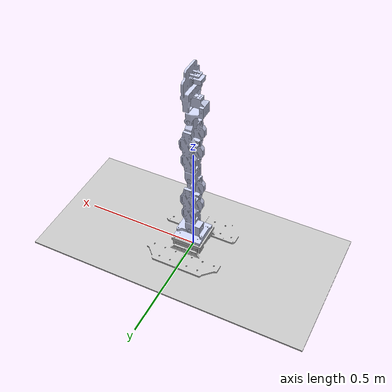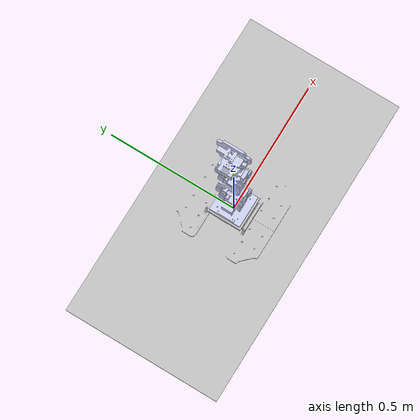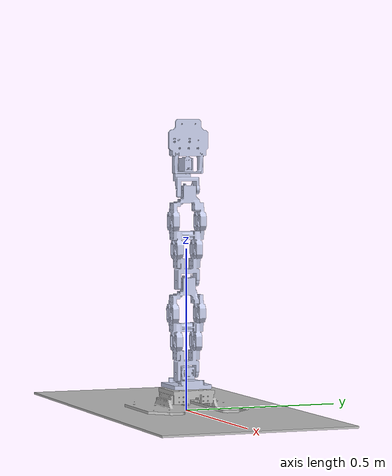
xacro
<?xml version="1.0" encoding="utf-8"?>
<robot
  name="skyline_urdf"
  xmlns:xacro="http://ros.org/wiki/xacro">

  <link name="world"/>

  <joint name="base_joint" type="fixed">
    <parent link="world"/>
    <child link="base_link"/>
    <origin rpy="0 0 0" xyz="0.0 0.0 0.0"/>
    </joint>

  <link
    name="base_link">
    <inertial>
      <origin
        xyz="3.9767E-05 0.0075231 -2.3978E-05"
        rpy="0 0 0" />
      <mass
        value="5.6578" />
      <inertia
        ixx="0.14702"
        ixy="-4.4448E-08"
        ixz="-4.8616E-08"
        iyy="0.73311"
        iyz="-1.0263E-09"
        izz="0.58618" />
    </inertial>
    <visual>
      <origin
        xyz="0 0 0"
        rpy="0 0 0" />
      <geometry>
        <mesh
          filename="package://skyline_urdf/meshes/base_link.STL" />
      </geometry>
      <material
        name="">
        <color
          rgba="0.75294 0.75294 0.75294 1" />
      </material>
    </visual>
    <collision>
      <origin
        xyz="0 0 0"
        rpy="0 0 0" />
      <geometry>
        <mesh
          filename="package://skyline_urdf/meshes/base_link.STL" />
      </geometry>
    </collision>
  </link>

  <link
    name="link_1">
    <inertial>
      <origin
        xyz="0.0028663 -0.015314 -0.0013736"
        rpy="0 0 0" />
      <mass
        value="0.32273" />
      <inertia
        ixx="0.00029459"
        ixy="1.3858E-05"
        ixz="2.0977E-06"
        iyy="0.000642"
        iyz="-2.7664E-06"
        izz="0.00040997" />
    </inertial>
    <visual>
      <origin
        xyz="0 0 0"
        rpy="0 0 0" />
      <geometry>
        <mesh
          filename="package://skyline_urdf/meshes/link_1.STL" />
      </geometry>
      <material
        name="">
        <color
          rgba="0.79216 0.81961 0.93333 1" />
      </material>
    </visual>
    <collision>
      <origin
        xyz="0 0 0"
        rpy="0 0 0" />
      <geometry>
        <mesh
          filename="package://skyline_urdf/meshes/link_1.STL" />
      </geometry>
    </collision>
  </link>
  <joint
    name="joint_0"
    type="revolute">
    <origin
      xyz="0.0005 0.0001 0.071125"
      rpy="-1.5708 0 3.1416" />
    <parent
      link="base_link" />
    <child
      link="link_1" />
    <axis
      xyz="0 1 0" />
    <limit
      lower="0"
      upper="${2*pi}"
      effort="300"
      velocity="3" />
  </joint>

  <link
    name="link_2">
    <inertial>
      <origin
        xyz="0.00026152 0.027731 -0.13538"
        rpy="0 0 0" />
      <mass
        value="0.47089" />
      <inertia
        ixx="0.00036399"
        ixy="-1.4586E-06"
        ixz="-1.0366E-06"
        iyy="0.00037487"
        iyz="1.9539E-06"
        izz="0.00015851" />
    </inertial>
    <visual>
      <origin
        xyz="0 0 0"
        rpy="0 0 0" />
      <geometry>
        <mesh
          filename="package://skyline_urdf/meshes/link_2.STL" />
      </geometry>
      <material
        name="">
        <color
          rgba="0.79216 0.81961 0.93333 1" />
      </material>
    </visual>
    <collision>
      <origin
        xyz="0 0 0"
        rpy="0 0 0" />
      <geometry>
        <mesh
          filename="package://skyline_urdf/meshes/link_2.STL" />
      </geometry>
    </collision>
  </link>
  <joint
    name="joint_1"
    type="revolute">
    <origin
      xyz="0 -0.044775 0.027271"
      rpy="-1.5708 0 0" />
    <parent
      link="link_1" />
    <child
      link="link_2" />
    <axis
      xyz="0 0 1" />
    <limit
      lower="0"
      upper="${pi}"
      effort="300"
      velocity="3" />
  </joint>

  <link
    name="link_3">
    <inertial>
      <origin
        xyz="-9.1345E-08 0.027755 -0.1351"
        rpy="0 0 0" />
      <mass
        value="0.46993" />
      <inertia
        ixx="0.00036418"
        ixy="5.5357E-10"
        ixz="6.5718E-10"
        iyy="0.00037396"
        iyz="1.473E-06"
        izz="0.00015835" />
    </inertial>
    <visual>
      <origin
        xyz="0 0 0"
        rpy="0 0 0" />
      <geometry>
        <mesh
          filename="package://skyline_urdf/meshes/link_3.STL" />
      </geometry>
      <material
        name="">
        <color
          rgba="0.79216 0.81961 0.93333 1" />
      </material>
    </visual>
    <collision>
      <origin
        xyz="0 0 0"
        rpy="0 0 0" />
      <geometry>
        <mesh
          filename="package://skyline_urdf/meshes/link_3.STL" />
      </geometry>
    </collision>
  </link>
  <joint
    name="joint_2"
    type="revolute">
    <origin
      xyz="0 0.001893 -0.28455"
      rpy="0 0 0" />
    <parent
      link="link_2" />
    <child
      link="link_3" />
    <axis
      xyz="0 0 1" />
    <limit
      lower="0"
      upper="${pi/2}"
      effort="300"
      velocity="3" />
  </joint>

  <link
    name="link_4">
    <inertial>
      <origin
        xyz="-0.02091 0.026578 0.04288"
        rpy="0 0 0" />
      <mass
        value="0.13387" />
      <inertia
        ixx="7.5889E-05"
        ixy="5.7749E-07"
        ixz="1.4261E-05"
        iyy="8.4688E-05"
        iyz="-1.7745E-06"
        izz="9.7666E-05" />
    </inertial>
    <visual>
      <origin
        xyz="0 0 0"
        rpy="0 0 0" />
      <geometry>
        <mesh
          filename="package://skyline_urdf/meshes/link_4.STL" />
      </geometry>
      <material
        name="">
        <color
          rgba="0.79216 0.81961 0.93333 1" />
      </material>
    </visual>
    <collision>
      <origin
        xyz="0 0 0"
        rpy="0 0 0" />
      <geometry>
        <mesh
          filename="package://skyline_urdf/meshes/link_4.STL" />
      </geometry>
    </collision>
  </link>
  <joint
    name="joint_3"
    type="revolute">
    <origin
      xyz="0 0.001893 -0.28455"
      rpy="3.1416 -0.0067822 3.1416" />
    <parent
      link="link_3" />
    <child
      link="link_4" />
    <axis
      xyz="0 0 1" />
    <limit
      lower="${-1*pi/4}"
      upper="${pi/4}"
      effort="300"
      velocity="3" />
  </joint>

  <link
    name="end_effector_link">
    <inertial>
      <origin
        xyz="7.096E-05 -0.020217 0.00033158"
        rpy="0 0 0" />
      <mass
        value="0.21271" />
      <inertia
        ixx="0.00032373"
        ixy="3.8989E-06"
        ixz="-4.7319E-07"
        iyy="0.00025001"
        iyz="6.6279E-07"
        izz="9.7621E-05" />
    </inertial>
    <visual>
      <origin
        xyz="0 0 0"
        rpy="0 0 0" />
      <geometry>
        <mesh
          filename="package://skyline_urdf/meshes/end_effector_link.STL" />
      </geometry>
      <material
        name="">
        <color
          rgba="0.79216 0.81961 0.93333 1" />
      </material>
    </visual>
    <collision>
      <origin
        xyz="0 0 0"
        rpy="0 0 0" />
      <geometry>
        <mesh
          filename="package://skyline_urdf/meshes/end_effector_link.STL" />
      </geometry>
    </collision>
  </link>
  <joint
    name="joint_4"
    type="revolute">
    <origin
      xyz="0.0032807 0.026793 0.10607"
      rpy="-1.5708 0.0067822 3.1416" />
    <parent
      link="link_4" />
    <child
      link="end_effector_link" />
    <axis
      xyz="0 1 0" />
    <limit
      lower="${-1*pi/4}"
      upper="${pi/4}"
      effort="300"
      velocity="3" />
  </joint>

  <!-- Transmission -->
  <transmission name="link_1_trans">
    <type>transmission_interface/SimpleTransmission</type>
    <joint name="joint_0">
      <hardwareInterface>hardware_interface/PositionJointInterface</hardwareInterface>
    </joint>
    <actuator name="link_1_motor">
      <hardwareInterface>hardware_interface/PositionJointInterface</hardwareInterface>
      <mechanicalReduction>1</mechanicalReduction>
    </actuator>
  </transmission>

  <transmission name="link_2_trans">
    <type>transmission_interface/SimpleTransmission</type>
    <joint name="joint_1">
      <hardwareInterface>hardware_interface/PositionJointInterface</hardwareInterface>
    </joint>
    <actuator name="link_2_motor">
      <hardwareInterface>hardware_interface/PositionJointInterface</hardwareInterface>
      <mechanicalReduction>1</mechanicalReduction>
    </actuator>
  </transmission>

  <transmission name="link_3_trans">
    <type>transmission_interface/SimpleTransmission</type>
    <joint name="joint_2">
      <hardwareInterface>hardware_interface/PositionJointInterface</hardwareInterface>
    </joint>
    <actuator name="link_3_motor">
      <hardwareInterface>hardware_interface/PositionJointInterface</hardwareInterface>
      <mechanicalReduction>1</mechanicalReduction>
    </actuator>
  </transmission>

  <transmission name="link_4_trans">
    <type>transmission_interface/SimpleTransmission</type>
    <joint name="joint_3">
      <hardwareInterface>hardware_interface/PositionJointInterface</hardwareInterface>
    </joint>
    <actuator name="link_4_motor">
      <hardwareInterface>hardware_interface/PositionJointInterface</hardwareInterface>
      <mechanicalReduction>1</mechanicalReduction>
    </actuator>
  </transmission>

  <transmission name="end_effector_link_trans">
    <type>transmission_interface/SimpleTransmission</type>
    <joint name="joint_4">
      <hardwareInterface>hardware_interface/PositionJointInterface</hardwareInterface>
    </joint>
    <actuator name="end_effector_link_motor">
      <hardwareInterface>hardware_interface/PositionJointInterface</hardwareInterface>
      <mechanicalReduction>1</mechanicalReduction>
    </actuator>
  </transmission>

  <gazebo>
    <plugin name="gazebo_ros_control" filename="libgazebo_ros_control.so">
    <robotNamespace>/Skyline</robotNamespace>
    </plugin>
  </gazebo>

  <gazebo reference="link_1">
    <selfCollide>true</selfCollide>
  </gazebo>

  <gazebo reference="link_2">
    <selfCollide>true</selfCollide>
  </gazebo>

  <gazebo reference="link_3">
    <selfCollide>true</selfCollide>
  </gazebo>

  <gazebo reference="link_4">
    <selfCollide>true</selfCollide>
  </gazebo>

  <gazebo reference="end_effector_link">
    <selfCollide>true</selfCollide>
  </gazebo>

</robot>
